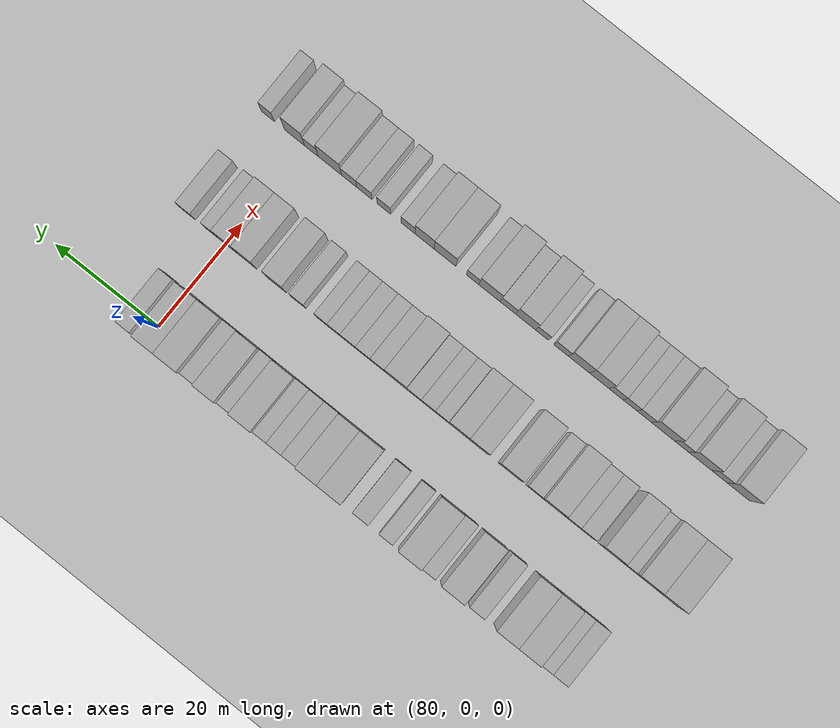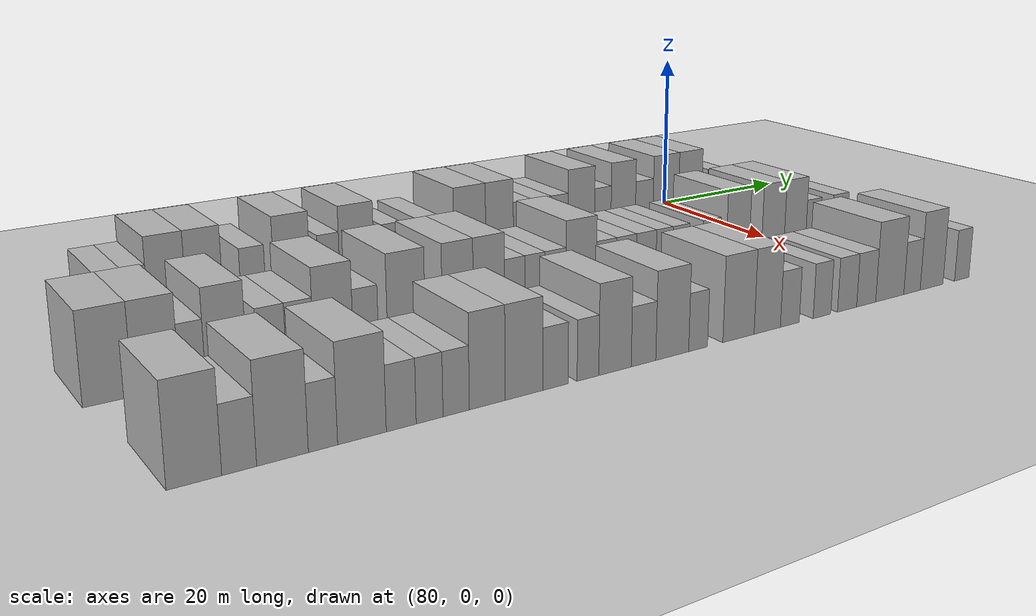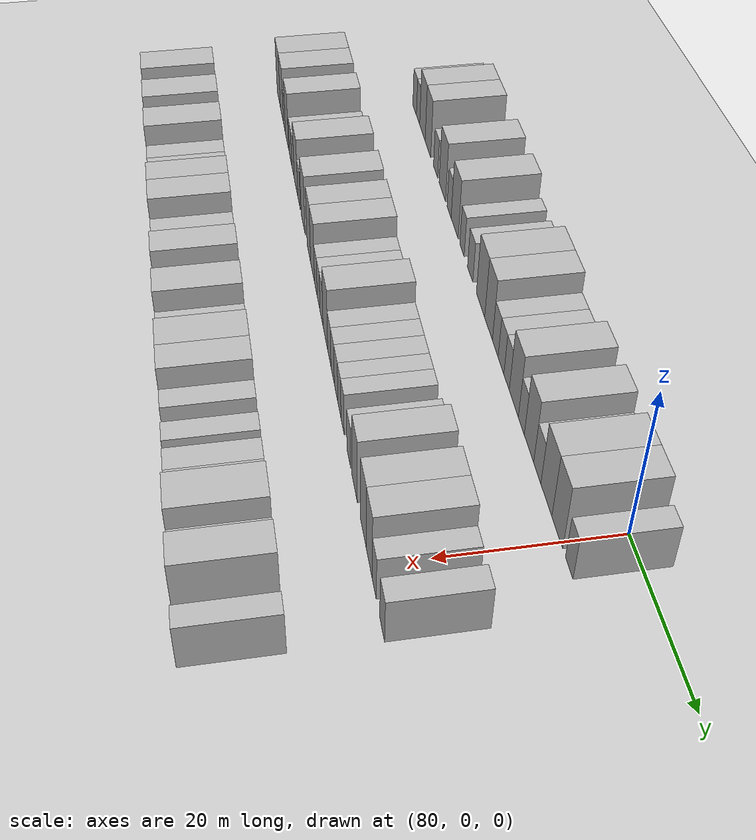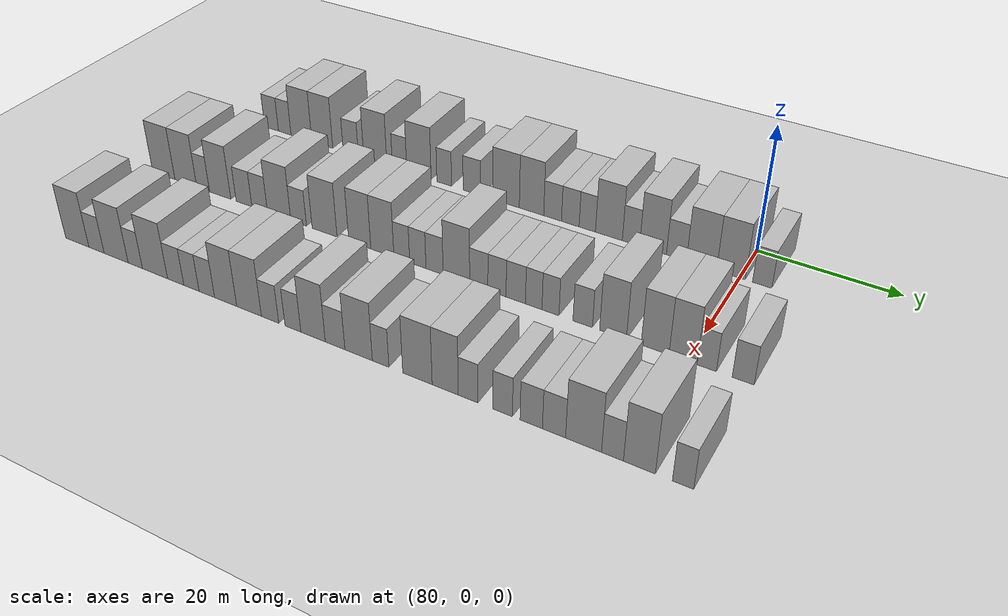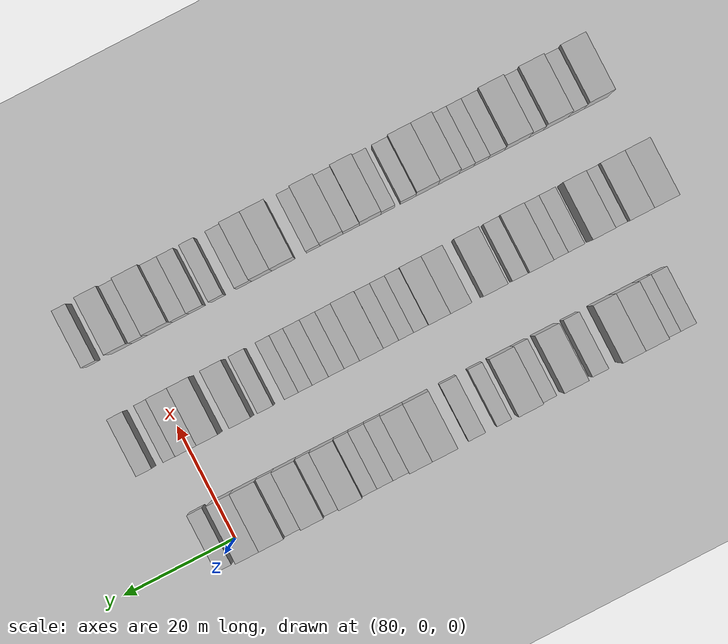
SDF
<sdf version="1.6">
 <world name="default">
  <include>
   <name>ground_plane_2</name>
   <uri>model://HANNAS_ground_plane</uri>
   <pose>100 0 0  0 0 0</pose>
  </include>
  <model name="building_571">
   <static>1</static>
   <pose>82.0000 -78.5633 0 0.000000 0.000000 0.000000</pose>
   <link name="link">
    <pose>0 0 3.00 0 0 0</pose>
    <collision name="collision"><geometry><box><size>10.0000 2.7761 6.0000</size></box></geometry></collision>
    <visual name="visual">
     <cast_shadows>0</cast_shadows>
     <geometry><box><size>10.0000 2.7761 6.0000</size></box></geometry>
     <material>
      <script>
       <uri>model://HANNAS_wall/materials/scripts</uri>
       <uri>model://HANNAS_wall/materials/textures</uri>
       <name>vrc/HANNAS_wall</name>
      </script>
     </material>
    </visual>
   </link>
  </model>
  <model name="building_572">
   <static>1</static>
   <pose>82.0000 -75.9227 0 0.000000 0.000000 0.000000</pose>
   <link name="link">
    <pose>0 0 3.00 0 0 0</pose>
    <collision name="collision"><geometry><box><size>10.0000 2.5051 6.0000</size></box></geometry></collision>
    <visual name="visual">
     <cast_shadows>0</cast_shadows>
     <geometry><box><size>10.0000 2.5051 6.0000</size></box></geometry>
     <material>
      <script>
       <uri>model://HANNAS_wall/materials/scripts</uri>
       <uri>model://HANNAS_wall/materials/textures</uri>
       <name>vrc/HANNAS_wall</name>
      </script>
     </material>
    </visual>
   </link>
  </model>
  <model name="building_573">
   <static>1</static>
   <pose>82.0000 -72.6256 0 0.000000 0.000000 0.000000</pose>
   <link name="link">
    <pose>0 0 4.50 0 0 0</pose>
    <collision name="collision"><geometry><box><size>10.0000 4.0890 9.0000</size></box></geometry></collision>
    <visual name="visual">
     <cast_shadows>0</cast_shadows>
     <geometry><box><size>10.0000 4.0890 9.0000</size></box></geometry>
     <material>
      <script>
       <uri>model://HANNAS_wall/materials/scripts</uri>
       <uri>model://HANNAS_wall/materials/textures</uri>
       <name>vrc/HANNAS_wall</name>
      </script>
     </material>
    </visual>
   </link>
  </model>
  <model name="building_574">
   <static>1</static>
   <pose>82.0000 -68.5696 0 0.000000 0.000000 0.000000</pose>
   <link name="link">
    <pose>0 0 4.50 0 0 0</pose>
    <collision name="collision"><geometry><box><size>10.0000 4.0230 9.0000</size></box></geometry></collision>
    <visual name="visual">
     <cast_shadows>0</cast_shadows>
     <geometry><box><size>10.0000 4.0230 9.0000</size></box></geometry>
     <material>
      <script>
       <uri>model://HANNAS_wall/materials/scripts</uri>
       <uri>model://HANNAS_wall/materials/textures</uri>
       <name>vrc/HANNAS_wall</name>
      </script>
     </material>
    </visual>
   </link>
  </model>
  <model name="building_575">
   <static>1</static>
   <pose>82.0000 -63.1375 0 0.000000 0.000000 0.000000</pose>
   <link name="link">
    <pose>0 0 3.00 0 0 0</pose>
    <collision name="collision"><geometry><box><size>10.0000 2.8412 6.0000</size></box></geometry></collision>
    <visual name="visual">
     <cast_shadows>0</cast_shadows>
     <geometry><box><size>10.0000 2.8412 6.0000</size></box></geometry>
     <material>
      <script>
       <uri>model://HANNAS_wall/materials/scripts</uri>
       <uri>model://HANNAS_wall/materials/textures</uri>
       <name>vrc/HANNAS_wall</name>
      </script>
     </material>
    </visual>
   </link>
  </model>
  <model name="building_576">
   <static>1</static>
   <pose>82.0000 -58.5789 0 0.000000 0.000000 0.000000</pose>
   <link name="link">
    <pose>0 0 4.50 0 0 0</pose>
    <collision name="collision"><geometry><box><size>10.0000 4.2760 9.0000</size></box></geometry></collision>
    <visual name="visual">
     <cast_shadows>0</cast_shadows>
     <geometry><box><size>10.0000 4.2760 9.0000</size></box></geometry>
     <material>
      <script>
       <uri>model://HANNAS_wall/materials/scripts</uri>
       <uri>model://HANNAS_wall/materials/textures</uri>
       <name>vrc/HANNAS_wall</name>
      </script>
     </material>
    </visual>
   </link>
  </model>
  <model name="building_577">
   <static>1</static>
   <pose>82.0000 -54.1396 0 0.000000 0.000000 0.000000</pose>
   <link name="link">
    <pose>0 0 3.00 0 0 0</pose>
    <collision name="collision"><geometry><box><size>10.0000 2.6026 6.0000</size></box></geometry></collision>
    <visual name="visual">
     <cast_shadows>0</cast_shadows>
     <geometry><box><size>10.0000 2.6026 6.0000</size></box></geometry>
     <material>
      <script>
       <uri>model://HANNAS_wall/materials/scripts</uri>
       <uri>model://HANNAS_wall/materials/textures</uri>
       <name>vrc/HANNAS_wall</name>
      </script>
     </material>
    </visual>
   </link>
  </model>
  <model name="building_578">
   <static>1</static>
   <pose>82.0000 -50.6684 0 0.000000 0.000000 0.000000</pose>
   <link name="link">
    <pose>0 0 4.50 0 0 0</pose>
    <collision name="collision"><geometry><box><size>10.0000 4.3397 9.0000</size></box></geometry></collision>
    <visual name="visual">
     <cast_shadows>0</cast_shadows>
     <geometry><box><size>10.0000 4.3397 9.0000</size></box></geometry>
     <material>
      <script>
       <uri>model://HANNAS_wall/materials/scripts</uri>
       <uri>model://HANNAS_wall/materials/textures</uri>
       <name>vrc/HANNAS_wall</name>
      </script>
     </material>
    </visual>
   </link>
  </model>
  <model name="building_579">
   <static>1</static>
   <pose>82.0000 -46.2146 0 0.000000 0.000000 0.000000</pose>
   <link name="link">
    <pose>0 0 3.00 0 0 0</pose>
    <collision name="collision"><geometry><box><size>10.0000 2.5679 6.0000</size></box></geometry></collision>
    <visual name="visual">
     <cast_shadows>0</cast_shadows>
     <geometry><box><size>10.0000 2.5679 6.0000</size></box></geometry>
     <material>
      <script>
       <uri>model://HANNAS_wall/materials/scripts</uri>
       <uri>model://HANNAS_wall/materials/textures</uri>
       <name>vrc/HANNAS_wall</name>
      </script>
     </material>
    </visual>
   </link>
  </model>
  <model name="building_580">
   <static>1</static>
   <pose>82.0000 -41.4383 0 0.000000 0.000000 0.000000</pose>
   <link name="link">
    <pose>0 0 3.00 0 0 0</pose>
    <collision name="collision"><geometry><box><size>10.0000 2.9846 6.0000</size></box></geometry></collision>
    <visual name="visual">
     <cast_shadows>0</cast_shadows>
     <geometry><box><size>10.0000 2.9846 6.0000</size></box></geometry>
     <material>
      <script>
       <uri>model://HANNAS_wall/materials/scripts</uri>
       <uri>model://HANNAS_wall/materials/textures</uri>
       <name>vrc/HANNAS_wall</name>
      </script>
     </material>
    </visual>
   </link>
  </model>
  <model name="building_581">
   <static>1</static>
   <pose>82.0000 -35.7157 0 0.000000 0.000000 0.000000</pose>
   <link name="link">
    <pose>0 0 4.50 0 0 0</pose>
    <collision name="collision"><geometry><box><size>10.0000 4.4606 9.0000</size></box></geometry></collision>
    <visual name="visual">
     <cast_shadows>0</cast_shadows>
     <geometry><box><size>10.0000 4.4606 9.0000</size></box></geometry>
     <material>
      <script>
       <uri>model://HANNAS_wall/materials/scripts</uri>
       <uri>model://HANNAS_wall/materials/textures</uri>
       <name>vrc/HANNAS_wall</name>
      </script>
     </material>
    </visual>
   </link>
  </model>
  <model name="building_582">
   <static>1</static>
   <pose>82.0000 -31.4929 0 0.000000 0.000000 0.000000</pose>
   <link name="link">
    <pose>0 0 4.50 0 0 0</pose>
    <collision name="collision"><geometry><box><size>10.0000 3.9851 9.0000</size></box></geometry></collision>
    <visual name="visual">
     <cast_shadows>0</cast_shadows>
     <geometry><box><size>10.0000 3.9851 9.0000</size></box></geometry>
     <material>
      <script>
       <uri>model://HANNAS_wall/materials/scripts</uri>
       <uri>model://HANNAS_wall/materials/textures</uri>
       <name>vrc/HANNAS_wall</name>
      </script>
     </material>
    </visual>
   </link>
  </model>
  <model name="building_583">
   <static>1</static>
   <pose>82.0000 -28.0771 0 0.000000 0.000000 0.000000</pose>
   <link name="link">
    <pose>0 0 3.00 0 0 0</pose>
    <collision name="collision"><geometry><box><size>10.0000 2.8464 6.0000</size></box></geometry></collision>
    <visual name="visual">
     <cast_shadows>0</cast_shadows>
     <geometry><box><size>10.0000 2.8464 6.0000</size></box></geometry>
     <material>
      <script>
       <uri>model://HANNAS_wall/materials/scripts</uri>
       <uri>model://HANNAS_wall/materials/textures</uri>
       <name>vrc/HANNAS_wall</name>
      </script>
     </material>
    </visual>
   </link>
  </model>
  <model name="building_584">
   <static>1</static>
   <pose>82.0000 -25.2578 0 0.000000 0.000000 0.000000</pose>
   <link name="link">
    <pose>0 0 3.00 0 0 0</pose>
    <collision name="collision"><geometry><box><size>10.0000 2.7924 6.0000</size></box></geometry></collision>
    <visual name="visual">
     <cast_shadows>0</cast_shadows>
     <geometry><box><size>10.0000 2.7924 6.0000</size></box></geometry>
     <material>
      <script>
       <uri>model://HANNAS_wall/materials/scripts</uri>
       <uri>model://HANNAS_wall/materials/textures</uri>
       <name>vrc/HANNAS_wall</name>
      </script>
     </material>
    </visual>
   </link>
  </model>
  <model name="building_585">
   <static>1</static>
   <pose>82.0000 -22.5825 0 0.000000 0.000000 0.000000</pose>
   <link name="link">
    <pose>0 0 3.00 0 0 0</pose>
    <collision name="collision"><geometry><box><size>10.0000 2.5582 6.0000</size></box></geometry></collision>
    <visual name="visual">
     <cast_shadows>0</cast_shadows>
     <geometry><box><size>10.0000 2.5582 6.0000</size></box></geometry>
     <material>
      <script>
       <uri>model://HANNAS_wall/materials/scripts</uri>
       <uri>model://HANNAS_wall/materials/textures</uri>
       <name>vrc/HANNAS_wall</name>
      </script>
     </material>
    </visual>
   </link>
  </model>
  <model name="building_586">
   <static>1</static>
   <pose>82.0000 -19.2371 0 0.000000 0.000000 0.000000</pose>
   <link name="link">
    <pose>0 0 4.50 0 0 0</pose>
    <collision name="collision"><geometry><box><size>10.0000 4.1325 9.0000</size></box></geometry></collision>
    <visual name="visual">
     <cast_shadows>0</cast_shadows>
     <geometry><box><size>10.0000 4.1325 9.0000</size></box></geometry>
     <material>
      <script>
       <uri>model://HANNAS_wall/materials/scripts</uri>
       <uri>model://HANNAS_wall/materials/textures</uri>
       <name>vrc/HANNAS_wall</name>
      </script>
     </material>
    </visual>
   </link>
  </model>
  <model name="building_587">
   <static>1</static>
   <pose>82.0000 -15.8638 0 0.000000 0.000000 0.000000</pose>
   <link name="link">
    <pose>0 0 3.00 0 0 0</pose>
    <collision name="collision"><geometry><box><size>10.0000 2.6140 6.0000</size></box></geometry></collision>
    <visual name="visual">
     <cast_shadows>0</cast_shadows>
     <geometry><box><size>10.0000 2.6140 6.0000</size></box></geometry>
     <material>
      <script>
       <uri>model://HANNAS_wall/materials/scripts</uri>
       <uri>model://HANNAS_wall/materials/textures</uri>
       <name>vrc/HANNAS_wall</name>
      </script>
     </material>
    </visual>
   </link>
  </model>
  <model name="building_588">
   <static>1</static>
   <pose>82.0000 -12.5617 0 0.000000 0.000000 0.000000</pose>
   <link name="link">
    <pose>0 0 4.50 0 0 0</pose>
    <collision name="collision"><geometry><box><size>10.0000 3.9901 9.0000</size></box></geometry></collision>
    <visual name="visual">
     <cast_shadows>0</cast_shadows>
     <geometry><box><size>10.0000 3.9901 9.0000</size></box></geometry>
     <material>
      <script>
       <uri>model://HANNAS_wall/materials/scripts</uri>
       <uri>model://HANNAS_wall/materials/textures</uri>
       <name>vrc/HANNAS_wall</name>
      </script>
     </material>
    </visual>
   </link>
  </model>
  <model name="building_589">
   <static>1</static>
   <pose>82.0000 -9.1025 0 0.000000 0.000000 0.000000</pose>
   <link name="link">
    <pose>0 0 3.00 0 0 0</pose>
    <collision name="collision"><geometry><box><size>10.0000 2.9283 6.0000</size></box></geometry></collision>
    <visual name="visual">
     <cast_shadows>0</cast_shadows>
     <geometry><box><size>10.0000 2.9283 6.0000</size></box></geometry>
     <material>
      <script>
       <uri>model://HANNAS_wall/materials/scripts</uri>
       <uri>model://HANNAS_wall/materials/textures</uri>
       <name>vrc/HANNAS_wall</name>
      </script>
     </material>
    </visual>
   </link>
  </model>
  <model name="building_590">
   <static>1</static>
   <pose>82.0000 -5.4748 0 0.000000 0.000000 0.000000</pose>
   <link name="link">
    <pose>0 0 4.50 0 0 0</pose>
    <collision name="collision"><geometry><box><size>10.0000 4.3272 9.0000</size></box></geometry></collision>
    <visual name="visual">
     <cast_shadows>0</cast_shadows>
     <geometry><box><size>10.0000 4.3272 9.0000</size></box></geometry>
     <material>
      <script>
       <uri>model://HANNAS_wall/materials/scripts</uri>
       <uri>model://HANNAS_wall/materials/textures</uri>
       <name>vrc/HANNAS_wall</name>
      </script>
     </material>
    </visual>
   </link>
  </model>
  <model name="building_591">
   <static>1</static>
   <pose>82.0000 -1.2862 0 0.000000 0.000000 0.000000</pose>
   <link name="link">
    <pose>0 0 4.50 0 0 0</pose>
    <collision name="collision"><geometry><box><size>10.0000 4.0501 9.0000</size></box></geometry></collision>
    <visual name="visual">
     <cast_shadows>0</cast_shadows>
     <geometry><box><size>10.0000 4.0501 9.0000</size></box></geometry>
     <material>
      <script>
       <uri>model://HANNAS_wall/materials/scripts</uri>
       <uri>model://HANNAS_wall/materials/textures</uri>
       <name>vrc/HANNAS_wall</name>
      </script>
     </material>
    </visual>
   </link>
  </model>
  <model name="building_592">
   <static>1</static>
   <pose>82.0000 3.0741 0 0.000000 0.000000 0.000000</pose>
   <link name="link">
    <pose>0 0 3.00 0 0 0</pose>
    <collision name="collision"><geometry><box><size>10.0000 2.6705 6.0000</size></box></geometry></collision>
    <visual name="visual">
     <cast_shadows>0</cast_shadows>
     <geometry><box><size>10.0000 2.6705 6.0000</size></box></geometry>
     <material>
      <script>
       <uri>model://HANNAS_wall/materials/scripts</uri>
       <uri>model://HANNAS_wall/materials/textures</uri>
       <name>vrc/HANNAS_wall</name>
      </script>
     </material>
    </visual>
   </link>
  </model>
  <model name="building_751">
   <static>1</static>
   <pose>101.0000 -84.1417 0 0.000000 0.000000 0.000000</pose>
   <link name="link">
    <pose>0 0 4.50 0 0 0</pose>
    <collision name="collision"><geometry><box><size>10.0000 4.4038 9.0000</size></box></geometry></collision>
    <visual name="visual">
     <cast_shadows>0</cast_shadows>
     <geometry><box><size>10.0000 4.4038 9.0000</size></box></geometry>
     <material>
      <script>
       <uri>model://HANNAS_wall/materials/scripts</uri>
       <uri>model://HANNAS_wall/materials/textures</uri>
       <name>vrc/HANNAS_wall</name>
      </script>
     </material>
    </visual>
   </link>
  </model>
  <model name="building_752">
   <static>1</static>
   <pose>101.0000 -79.8134 0 0.000000 0.000000 0.000000</pose>
   <link name="link">
    <pose>0 0 4.50 0 0 0</pose>
    <collision name="collision"><geometry><box><size>10.0000 4.2528 9.0000</size></box></geometry></collision>
    <visual name="visual">
     <cast_shadows>0</cast_shadows>
     <geometry><box><size>10.0000 4.2528 9.0000</size></box></geometry>
     <material>
      <script>
       <uri>model://HANNAS_wall/materials/scripts</uri>
       <uri>model://HANNAS_wall/materials/textures</uri>
       <name>vrc/HANNAS_wall</name>
      </script>
     </material>
    </visual>
   </link>
  </model>
  <model name="building_753">
   <static>1</static>
   <pose>101.0000 -76.4559 0 0.000000 0.000000 0.000000</pose>
   <link name="link">
    <pose>0 0 3.00 0 0 0</pose>
    <collision name="collision"><geometry><box><size>10.0000 2.4620 6.0000</size></box></geometry></collision>
    <visual name="visual">
     <cast_shadows>0</cast_shadows>
     <geometry><box><size>10.0000 2.4620 6.0000</size></box></geometry>
     <material>
      <script>
       <uri>model://HANNAS_wall/materials/scripts</uri>
       <uri>model://HANNAS_wall/materials/textures</uri>
       <name>vrc/HANNAS_wall</name>
      </script>
     </material>
    </visual>
   </link>
  </model>
  <model name="building_754">
   <static>1</static>
   <pose>101.0000 -73.2183 0 0.000000 0.000000 0.000000</pose>
   <link name="link">
    <pose>0 0 4.50 0 0 0</pose>
    <collision name="collision"><geometry><box><size>10.0000 4.0132 9.0000</size></box></geometry></collision>
    <visual name="visual">
     <cast_shadows>0</cast_shadows>
     <geometry><box><size>10.0000 4.0132 9.0000</size></box></geometry>
     <material>
      <script>
       <uri>model://HANNAS_wall/materials/scripts</uri>
       <uri>model://HANNAS_wall/materials/textures</uri>
       <name>vrc/HANNAS_wall</name>
      </script>
     </material>
    </visual>
   </link>
  </model>
  <model name="building_755">
   <static>1</static>
   <pose>101.0000 -68.7590 0 0.000000 0.000000 0.000000</pose>
   <link name="link">
    <pose>0 0 3.00 0 0 0</pose>
    <collision name="collision"><geometry><box><size>10.0000 2.9053 6.0000</size></box></geometry></collision>
    <visual name="visual">
     <cast_shadows>0</cast_shadows>
     <geometry><box><size>10.0000 2.9053 6.0000</size></box></geometry>
     <material>
      <script>
       <uri>model://HANNAS_wall/materials/scripts</uri>
       <uri>model://HANNAS_wall/materials/textures</uri>
       <name>vrc/HANNAS_wall</name>
      </script>
     </material>
    </visual>
   </link>
  </model>
  <model name="building_756">
   <static>1</static>
   <pose>101.0000 -65.8797 0 0.000000 0.000000 0.000000</pose>
   <link name="link">
    <pose>0 0 3.00 0 0 0</pose>
    <collision name="collision"><geometry><box><size>10.0000 2.8534 6.0000</size></box></geometry></collision>
    <visual name="visual">
     <cast_shadows>0</cast_shadows>
     <geometry><box><size>10.0000 2.8534 6.0000</size></box></geometry>
     <material>
      <script>
       <uri>model://HANNAS_wall/materials/scripts</uri>
       <uri>model://HANNAS_wall/materials/textures</uri>
       <name>vrc/HANNAS_wall</name>
      </script>
     </material>
    </visual>
   </link>
  </model>
  <model name="building_757">
   <static>1</static>
   <pose>101.0000 -62.3561 0 0.000000 0.000000 0.000000</pose>
   <link name="link">
    <pose>0 0 4.50 0 0 0</pose>
    <collision name="collision"><geometry><box><size>10.0000 4.1937 9.0000</size></box></geometry></collision>
    <visual name="visual">
     <cast_shadows>0</cast_shadows>
     <geometry><box><size>10.0000 4.1937 9.0000</size></box></geometry>
     <material>
      <script>
       <uri>model://HANNAS_wall/materials/scripts</uri>
       <uri>model://HANNAS_wall/materials/textures</uri>
       <name>vrc/HANNAS_wall</name>
      </script>
     </material>
    </visual>
   </link>
  </model>
  <model name="building_758">
   <static>1</static>
   <pose>101.0000 -58.8828 0 0.000000 0.000000 0.000000</pose>
   <link name="link">
    <pose>0 0 3.00 0 0 0</pose>
    <collision name="collision"><geometry><box><size>10.0000 2.7529 6.0000</size></box></geometry></collision>
    <visual name="visual">
     <cast_shadows>0</cast_shadows>
     <geometry><box><size>10.0000 2.7529 6.0000</size></box></geometry>
     <material>
      <script>
       <uri>model://HANNAS_wall/materials/scripts</uri>
       <uri>model://HANNAS_wall/materials/textures</uri>
       <name>vrc/HANNAS_wall</name>
      </script>
     </material>
    </visual>
   </link>
  </model>
  <model name="building_759">
   <static>1</static>
   <pose>101.0000 -54.3605 0 0.000000 0.000000 0.000000</pose>
   <link name="link">
    <pose>0 0 4.50 0 0 0</pose>
    <collision name="collision"><geometry><box><size>10.0000 4.2918 9.0000</size></box></geometry></collision>
    <visual name="visual">
     <cast_shadows>0</cast_shadows>
     <geometry><box><size>10.0000 4.2918 9.0000</size></box></geometry>
     <material>
      <script>
       <uri>model://HANNAS_wall/materials/scripts</uri>
       <uri>model://HANNAS_wall/materials/textures</uri>
       <name>vrc/HANNAS_wall</name>
      </script>
     </material>
    </visual>
   </link>
  </model>
  <model name="building_760">
   <static>1</static>
   <pose>101.0000 -48.3642 0 0.000000 0.000000 0.000000</pose>
   <link name="link">
    <pose>0 0 4.50 0 0 0</pose>
    <collision name="collision"><geometry><box><size>10.0000 3.7008 9.0000</size></box></geometry></collision>
    <visual name="visual">
     <cast_shadows>0</cast_shadows>
     <geometry><box><size>10.0000 3.7008 9.0000</size></box></geometry>
     <material>
      <script>
       <uri>model://HANNAS_wall/materials/scripts</uri>
       <uri>model://HANNAS_wall/materials/textures</uri>
       <name>vrc/HANNAS_wall</name>
      </script>
     </material>
    </visual>
   </link>
  </model>
  <model name="building_761">
   <static>1</static>
   <pose>101.0000 -44.6102 0 0.000000 0.000000 0.000000</pose>
   <link name="link">
    <pose>0 0 4.50 0 0 0</pose>
    <collision name="collision"><geometry><box><size>10.0000 3.8074 9.0000</size></box></geometry></collision>
    <visual name="visual">
     <cast_shadows>0</cast_shadows>
     <geometry><box><size>10.0000 3.8074 9.0000</size></box></geometry>
     <material>
      <script>
       <uri>model://HANNAS_wall/materials/scripts</uri>
       <uri>model://HANNAS_wall/materials/textures</uri>
       <name>vrc/HANNAS_wall</name>
      </script>
     </material>
    </visual>
   </link>
  </model>
  <model name="building_762">
   <static>1</static>
   <pose>101.0000 -41.4320 0 0.000000 0.000000 0.000000</pose>
   <link name="link">
    <pose>0 0 3.00 0 0 0</pose>
    <collision name="collision"><geometry><box><size>10.0000 2.5489 6.0000</size></box></geometry></collision>
    <visual name="visual">
     <cast_shadows>0</cast_shadows>
     <geometry><box><size>10.0000 2.5489 6.0000</size></box></geometry>
     <material>
      <script>
       <uri>model://HANNAS_wall/materials/scripts</uri>
       <uri>model://HANNAS_wall/materials/textures</uri>
       <name>vrc/HANNAS_wall</name>
      </script>
     </material>
    </visual>
   </link>
  </model>
  <model name="building_763">
   <static>1</static>
   <pose>101.0000 -38.8508 0 0.000000 0.000000 0.000000</pose>
   <link name="link">
    <pose>0 0 3.00 0 0 0</pose>
    <collision name="collision"><geometry><box><size>10.0000 2.6135 6.0000</size></box></geometry></collision>
    <visual name="visual">
     <cast_shadows>0</cast_shadows>
     <geometry><box><size>10.0000 2.6135 6.0000</size></box></geometry>
     <material>
      <script>
       <uri>model://HANNAS_wall/materials/scripts</uri>
       <uri>model://HANNAS_wall/materials/textures</uri>
       <name>vrc/HANNAS_wall</name>
      </script>
     </material>
    </visual>
   </link>
  </model>
  <model name="building_764">
   <static>1</static>
   <pose>101.0000 -36.1887 0 0.000000 0.000000 0.000000</pose>
   <link name="link">
    <pose>0 0 3.00 0 0 0</pose>
    <collision name="collision"><geometry><box><size>10.0000 2.7107 6.0000</size></box></geometry></collision>
    <visual name="visual">
     <cast_shadows>0</cast_shadows>
     <geometry><box><size>10.0000 2.7107 6.0000</size></box></geometry>
     <material>
      <script>
       <uri>model://HANNAS_wall/materials/scripts</uri>
       <uri>model://HANNAS_wall/materials/textures</uri>
       <name>vrc/HANNAS_wall</name>
      </script>
     </material>
    </visual>
   </link>
  </model>
  <model name="building_765">
   <static>1</static>
   <pose>101.0000 -32.7738 0 0.000000 0.000000 0.000000</pose>
   <link name="link">
    <pose>0 0 4.50 0 0 0</pose>
    <collision name="collision"><geometry><box><size>10.0000 4.1192 9.0000</size></box></geometry></collision>
    <visual name="visual">
     <cast_shadows>0</cast_shadows>
     <geometry><box><size>10.0000 4.1192 9.0000</size></box></geometry>
     <material>
      <script>
       <uri>model://HANNAS_wall/materials/scripts</uri>
       <uri>model://HANNAS_wall/materials/textures</uri>
       <name>vrc/HANNAS_wall</name>
      </script>
     </material>
    </visual>
   </link>
  </model>
  <model name="building_766">
   <static>1</static>
   <pose>101.0000 -29.3287 0 0.000000 0.000000 0.000000</pose>
   <link name="link">
    <pose>0 0 3.00 0 0 0</pose>
    <collision name="collision"><geometry><box><size>10.0000 2.7709 6.0000</size></box></geometry></collision>
    <visual name="visual">
     <cast_shadows>0</cast_shadows>
     <geometry><box><size>10.0000 2.7709 6.0000</size></box></geometry>
     <material>
      <script>
       <uri>model://HANNAS_wall/materials/scripts</uri>
       <uri>model://HANNAS_wall/materials/textures</uri>
       <name>vrc/HANNAS_wall</name>
      </script>
     </material>
    </visual>
   </link>
  </model>
  <model name="building_767">
   <static>1</static>
   <pose>101.0000 -26.5750 0 0.000000 0.000000 0.000000</pose>
   <link name="link">
    <pose>0 0 3.00 0 0 0</pose>
    <collision name="collision"><geometry><box><size>10.0000 2.7366 6.0000</size></box></geometry></collision>
    <visual name="visual">
     <cast_shadows>0</cast_shadows>
     <geometry><box><size>10.0000 2.7366 6.0000</size></box></geometry>
     <material>
      <script>
       <uri>model://HANNAS_wall/materials/scripts</uri>
       <uri>model://HANNAS_wall/materials/textures</uri>
       <name>vrc/HANNAS_wall</name>
      </script>
     </material>
    </visual>
   </link>
  </model>
  <model name="building_768">
   <static>1</static>
   <pose>101.0000 -23.7702 0 0.000000 0.000000 0.000000</pose>
   <link name="link">
    <pose>0 0 3.00 0 0 0</pose>
    <collision name="collision"><geometry><box><size>10.0000 2.8729 6.0000</size></box></geometry></collision>
    <visual name="visual">
     <cast_shadows>0</cast_shadows>
     <geometry><box><size>10.0000 2.8729 6.0000</size></box></geometry>
     <material>
      <script>
       <uri>model://HANNAS_wall/materials/scripts</uri>
       <uri>model://HANNAS_wall/materials/textures</uri>
       <name>vrc/HANNAS_wall</name>
      </script>
     </material>
    </visual>
   </link>
  </model>
  <model name="building_769">
   <static>1</static>
   <pose>101.0000 -21.1255 0 0.000000 0.000000 0.000000</pose>
   <link name="link">
    <pose>0 0 3.00 0 0 0</pose>
    <collision name="collision"><geometry><box><size>10.0000 2.4165 6.0000</size></box></geometry></collision>
    <visual name="visual">
     <cast_shadows>0</cast_shadows>
     <geometry><box><size>10.0000 2.4165 6.0000</size></box></geometry>
     <material>
      <script>
       <uri>model://HANNAS_wall/materials/scripts</uri>
       <uri>model://HANNAS_wall/materials/textures</uri>
       <name>vrc/HANNAS_wall</name>
      </script>
     </material>
    </visual>
   </link>
  </model>
  <model name="building_770">
   <static>1</static>
   <pose>101.0000 -18.6906 0 0.000000 0.000000 0.000000</pose>
   <link name="link">
    <pose>0 0 3.00 0 0 0</pose>
    <collision name="collision"><geometry><box><size>10.0000 2.4534 6.0000</size></box></geometry></collision>
    <visual name="visual">
     <cast_shadows>0</cast_shadows>
     <geometry><box><size>10.0000 2.4534 6.0000</size></box></geometry>
     <material>
      <script>
       <uri>model://HANNAS_wall/materials/scripts</uri>
       <uri>model://HANNAS_wall/materials/textures</uri>
       <name>vrc/HANNAS_wall</name>
      </script>
     </material>
    </visual>
   </link>
  </model>
  <model name="building_771">
   <static>1</static>
   <pose>101.0000 -14.0939 0 0.000000 0.000000 0.000000</pose>
   <link name="link">
    <pose>0 0 3.00 0 0 0</pose>
    <collision name="collision"><geometry><box><size>10.0000 2.7400 6.0000</size></box></geometry></collision>
    <visual name="visual">
     <cast_shadows>0</cast_shadows>
     <geometry><box><size>10.0000 2.7400 6.0000</size></box></geometry>
     <material>
      <script>
       <uri>model://HANNAS_wall/materials/scripts</uri>
       <uri>model://HANNAS_wall/materials/textures</uri>
       <name>vrc/HANNAS_wall</name>
      </script>
     </material>
    </visual>
   </link>
  </model>
  <model name="building_772">
   <static>1</static>
   <pose>101.0000 -9.8814 0 0.000000 0.000000 0.000000</pose>
   <link name="link">
    <pose>0 0 4.50 0 0 0</pose>
    <collision name="collision"><geometry><box><size>10.0000 3.6848 9.0000</size></box></geometry></collision>
    <visual name="visual">
     <cast_shadows>0</cast_shadows>
     <geometry><box><size>10.0000 3.6848 9.0000</size></box></geometry>
     <material>
      <script>
       <uri>model://HANNAS_wall/materials/scripts</uri>
       <uri>model://HANNAS_wall/materials/textures</uri>
       <name>vrc/HANNAS_wall</name>
      </script>
     </material>
    </visual>
   </link>
  </model>
  <model name="building_773">
   <static>1</static>
   <pose>101.0000 -4.1762 0 0.000000 0.000000 0.000000</pose>
   <link name="link">
    <pose>0 0 4.50 0 0 0</pose>
    <collision name="collision"><geometry><box><size>10.0000 3.7255 9.0000</size></box></geometry></collision>
    <visual name="visual">
     <cast_shadows>0</cast_shadows>
     <geometry><box><size>10.0000 3.7255 9.0000</size></box></geometry>
     <material>
      <script>
       <uri>model://HANNAS_wall/materials/scripts</uri>
       <uri>model://HANNAS_wall/materials/textures</uri>
       <name>vrc/HANNAS_wall</name>
      </script>
     </material>
    </visual>
   </link>
  </model>
  <model name="building_774">
   <static>1</static>
   <pose>101.0000 -0.4808 0 0.000000 0.000000 0.000000</pose>
   <link name="link">
    <pose>0 0 4.50 0 0 0</pose>
    <collision name="collision"><geometry><box><size>10.0000 3.6653 9.0000</size></box></geometry></collision>
    <visual name="visual">
     <cast_shadows>0</cast_shadows>
     <geometry><box><size>10.0000 3.6653 9.0000</size></box></geometry>
     <material>
      <script>
       <uri>model://HANNAS_wall/materials/scripts</uri>
       <uri>model://HANNAS_wall/materials/textures</uri>
       <name>vrc/HANNAS_wall</name>
      </script>
     </material>
    </visual>
   </link>
  </model>
  <model name="building_775">
   <static>1</static>
   <pose>101.0000 2.5983 0 0.000000 0.000000 0.000000</pose>
   <link name="link">
    <pose>0 0 3.00 0 0 0</pose>
    <collision name="collision"><geometry><box><size>10.0000 2.4929 6.0000</size></box></geometry></collision>
    <visual name="visual">
     <cast_shadows>0</cast_shadows>
     <geometry><box><size>10.0000 2.4929 6.0000</size></box></geometry>
     <material>
      <script>
       <uri>model://HANNAS_wall/materials/scripts</uri>
       <uri>model://HANNAS_wall/materials/textures</uri>
       <name>vrc/HANNAS_wall</name>
      </script>
     </material>
    </visual>
   </link>
  </model>
  <model name="building_776">
   <static>1</static>
   <pose>101.0000 7.2235 0 0.000000 0.000000 0.000000</pose>
   <link name="link">
    <pose>0 0 3.00 0 0 0</pose>
    <collision name="collision"><geometry><box><size>10.0000 2.7576 6.0000</size></box></geometry></collision>
    <visual name="visual">
     <cast_shadows>0</cast_shadows>
     <geometry><box><size>10.0000 2.7576 6.0000</size></box></geometry>
     <material>
      <script>
       <uri>model://HANNAS_wall/materials/scripts</uri>
       <uri>model://HANNAS_wall/materials/textures</uri>
       <name>vrc/HANNAS_wall</name>
      </script>
     </material>
    </visual>
   </link>
  </model>
  <model name="building_929">
   <static>1</static>
   <pose>120.0000 -82.8137 0 0.000000 0.000000 0.000000</pose>
   <link name="link">
    <pose>0 0 4.50 0 0 0</pose>
    <collision name="collision"><geometry><box><size>10.0000 4.4011 9.0000</size></box></geometry></collision>
    <visual name="visual">
     <cast_shadows>0</cast_shadows>
     <geometry><box><size>10.0000 4.4011 9.0000</size></box></geometry>
     <material>
      <script>
       <uri>model://HANNAS_wall/materials/scripts</uri>
       <uri>model://HANNAS_wall/materials/textures</uri>
       <name>vrc/HANNAS_wall</name>
      </script>
     </material>
    </visual>
   </link>
  </model>
  <model name="building_930">
   <static>1</static>
   <pose>120.0000 -79.1830 0 0.000000 0.000000 0.000000</pose>
   <link name="link">
    <pose>0 0 3.00 0 0 0</pose>
    <collision name="collision"><geometry><box><size>10.0000 2.8603 6.0000</size></box></geometry></collision>
    <visual name="visual">
     <cast_shadows>0</cast_shadows>
     <geometry><box><size>10.0000 2.8603 6.0000</size></box></geometry>
     <material>
      <script>
       <uri>model://HANNAS_wall/materials/scripts</uri>
       <uri>model://HANNAS_wall/materials/textures</uri>
       <name>vrc/HANNAS_wall</name>
      </script>
     </material>
    </visual>
   </link>
  </model>
  <model name="building_931">
   <static>1</static>
   <pose>120.0000 -75.5513 0 0.000000 0.000000 0.000000</pose>
   <link name="link">
    <pose>0 0 4.50 0 0 0</pose>
    <collision name="collision"><geometry><box><size>10.0000 4.4030 9.0000</size></box></geometry></collision>
    <visual name="visual">
     <cast_shadows>0</cast_shadows>
     <geometry><box><size>10.0000 4.4030 9.0000</size></box></geometry>
     <material>
      <script>
       <uri>model://HANNAS_wall/materials/scripts</uri>
       <uri>model://HANNAS_wall/materials/textures</uri>
       <name>vrc/HANNAS_wall</name>
      </script>
     </material>
    </visual>
   </link>
  </model>
  <model name="building_932">
   <static>1</static>
   <pose>120.0000 -72.0580 0 0.000000 0.000000 0.000000</pose>
   <link name="link">
    <pose>0 0 3.00 0 0 0</pose>
    <collision name="collision"><geometry><box><size>10.0000 2.5837 6.0000</size></box></geometry></collision>
    <visual name="visual">
     <cast_shadows>0</cast_shadows>
     <geometry><box><size>10.0000 2.5837 6.0000</size></box></geometry>
     <material>
      <script>
       <uri>model://HANNAS_wall/materials/scripts</uri>
       <uri>model://HANNAS_wall/materials/textures</uri>
       <name>vrc/HANNAS_wall</name>
      </script>
     </material>
    </visual>
   </link>
  </model>
  <model name="building_933">
   <static>1</static>
   <pose>120.0000 -68.5419 0 0.000000 0.000000 0.000000</pose>
   <link name="link">
    <pose>0 0 4.50 0 0 0</pose>
    <collision name="collision"><geometry><box><size>10.0000 4.4484 9.0000</size></box></geometry></collision>
    <visual name="visual">
     <cast_shadows>0</cast_shadows>
     <geometry><box><size>10.0000 4.4484 9.0000</size></box></geometry>
     <material>
      <script>
       <uri>model://HANNAS_wall/materials/scripts</uri>
       <uri>model://HANNAS_wall/materials/textures</uri>
       <name>vrc/HANNAS_wall</name>
      </script>
     </material>
    </visual>
   </link>
  </model>
  <model name="building_934">
   <static>1</static>
   <pose>120.0000 -64.8981 0 0.000000 0.000000 0.000000</pose>
   <link name="link">
    <pose>0 0 3.00 0 0 0</pose>
    <collision name="collision"><geometry><box><size>10.0000 2.8392 6.0000</size></box></geometry></collision>
    <visual name="visual">
     <cast_shadows>0</cast_shadows>
     <geometry><box><size>10.0000 2.8392 6.0000</size></box></geometry>
     <material>
      <script>
       <uri>model://HANNAS_wall/materials/scripts</uri>
       <uri>model://HANNAS_wall/materials/textures</uri>
       <name>vrc/HANNAS_wall</name>
      </script>
     </material>
    </visual>
   </link>
  </model>
  <model name="building_935">
   <static>1</static>
   <pose>120.0000 -62.1712 0 0.000000 0.000000 0.000000</pose>
   <link name="link">
    <pose>0 0 3.00 0 0 0</pose>
    <collision name="collision"><geometry><box><size>10.0000 2.6145 6.0000</size></box></geometry></collision>
    <visual name="visual">
     <cast_shadows>0</cast_shadows>
     <geometry><box><size>10.0000 2.6145 6.0000</size></box></geometry>
     <material>
      <script>
       <uri>model://HANNAS_wall/materials/scripts</uri>
       <uri>model://HANNAS_wall/materials/textures</uri>
       <name>vrc/HANNAS_wall</name>
      </script>
     </material>
    </visual>
   </link>
  </model>
  <model name="building_936">
   <static>1</static>
   <pose>120.0000 -59.5488 0 0.000000 0.000000 0.000000</pose>
   <link name="link">
    <pose>0 0 3.00 0 0 0</pose>
    <collision name="collision"><geometry><box><size>10.0000 2.6304 6.0000</size></box></geometry></collision>
    <visual name="visual">
     <cast_shadows>0</cast_shadows>
     <geometry><box><size>10.0000 2.6304 6.0000</size></box></geometry>
     <material>
      <script>
       <uri>model://HANNAS_wall/materials/scripts</uri>
       <uri>model://HANNAS_wall/materials/textures</uri>
       <name>vrc/HANNAS_wall</name>
      </script>
     </material>
    </visual>
   </link>
  </model>
  <model name="building_937">
   <static>1</static>
   <pose>120.0000 -56.3891 0 0.000000 0.000000 0.000000</pose>
   <link name="link">
    <pose>0 0 4.50 0 0 0</pose>
    <collision name="collision"><geometry><box><size>10.0000 3.6889 9.0000</size></box></geometry></collision>
    <visual name="visual">
     <cast_shadows>0</cast_shadows>
     <geometry><box><size>10.0000 3.6889 9.0000</size></box></geometry>
     <material>
      <script>
       <uri>model://HANNAS_wall/materials/scripts</uri>
       <uri>model://HANNAS_wall/materials/textures</uri>
       <name>vrc/HANNAS_wall</name>
      </script>
     </material>
    </visual>
   </link>
  </model>
  <model name="building_938">
   <static>1</static>
   <pose>120.0000 -52.5288 0 0.000000 0.000000 0.000000</pose>
   <link name="link">
    <pose>0 0 4.50 0 0 0</pose>
    <collision name="collision"><geometry><box><size>10.0000 4.0318 9.0000</size></box></geometry></collision>
    <visual name="visual">
     <cast_shadows>0</cast_shadows>
     <geometry><box><size>10.0000 4.0318 9.0000</size></box></geometry>
     <material>
      <script>
       <uri>model://HANNAS_wall/materials/scripts</uri>
       <uri>model://HANNAS_wall/materials/textures</uri>
       <name>vrc/HANNAS_wall</name>
      </script>
     </material>
    </visual>
   </link>
  </model>
  <model name="building_939">
   <static>1</static>
   <pose>120.0000 -49.1230 0 0.000000 0.000000 0.000000</pose>
   <link name="link">
    <pose>0 0 3.00 0 0 0</pose>
    <collision name="collision"><geometry><box><size>10.0000 2.7797 6.0000</size></box></geometry></collision>
    <visual name="visual">
     <cast_shadows>0</cast_shadows>
     <geometry><box><size>10.0000 2.7797 6.0000</size></box></geometry>
     <material>
      <script>
       <uri>model://HANNAS_wall/materials/scripts</uri>
       <uri>model://HANNAS_wall/materials/textures</uri>
       <name>vrc/HANNAS_wall</name>
      </script>
     </material>
    </visual>
   </link>
  </model>
  <model name="building_940">
   <static>1</static>
   <pose>120.0000 -45.4932 0 0.000000 0.000000 0.000000</pose>
   <link name="link">
    <pose>0 0 3.00 0 0 0</pose>
    <collision name="collision"><geometry><box><size>10.0000 2.4798 6.0000</size></box></geometry></collision>
    <visual name="visual">
     <cast_shadows>0</cast_shadows>
     <geometry><box><size>10.0000 2.4798 6.0000</size></box></geometry>
     <material>
      <script>
       <uri>model://HANNAS_wall/materials/scripts</uri>
       <uri>model://HANNAS_wall/materials/textures</uri>
       <name>vrc/HANNAS_wall</name>
      </script>
     </material>
    </visual>
   </link>
  </model>
  <model name="building_941">
   <static>1</static>
   <pose>120.0000 -42.3587 0 0.000000 0.000000 0.000000</pose>
   <link name="link">
    <pose>0 0 4.50 0 0 0</pose>
    <collision name="collision"><geometry><box><size>10.0000 3.7893 9.0000</size></box></geometry></collision>
    <visual name="visual">
     <cast_shadows>0</cast_shadows>
     <geometry><box><size>10.0000 3.7893 9.0000</size></box></geometry>
     <material>
      <script>
       <uri>model://HANNAS_wall/materials/scripts</uri>
       <uri>model://HANNAS_wall/materials/textures</uri>
       <name>vrc/HANNAS_wall</name>
      </script>
     </material>
    </visual>
   </link>
  </model>
  <model name="building_942">
   <static>1</static>
   <pose>120.0000 -38.9791 0 0.000000 0.000000 0.000000</pose>
   <link name="link">
    <pose>0 0 3.00 0 0 0</pose>
    <collision name="collision"><geometry><box><size>10.0000 2.9699 6.0000</size></box></geometry></collision>
    <visual name="visual">
     <cast_shadows>0</cast_shadows>
     <geometry><box><size>10.0000 2.9699 6.0000</size></box></geometry>
     <material>
      <script>
       <uri>model://HANNAS_wall/materials/scripts</uri>
       <uri>model://HANNAS_wall/materials/textures</uri>
       <name>vrc/HANNAS_wall</name>
      </script>
     </material>
    </visual>
   </link>
  </model>
  <model name="building_943">
   <static>1</static>
   <pose>120.0000 -35.4485 0 0.000000 0.000000 0.000000</pose>
   <link name="link">
    <pose>0 0 4.50 0 0 0</pose>
    <collision name="collision"><geometry><box><size>10.0000 4.0914 9.0000</size></box></geometry></collision>
    <visual name="visual">
     <cast_shadows>0</cast_shadows>
     <geometry><box><size>10.0000 4.0914 9.0000</size></box></geometry>
     <material>
      <script>
       <uri>model://HANNAS_wall/materials/scripts</uri>
       <uri>model://HANNAS_wall/materials/textures</uri>
       <name>vrc/HANNAS_wall</name>
      </script>
     </material>
    </visual>
   </link>
  </model>
  <model name="building_944">
   <static>1</static>
   <pose>120.0000 -32.1953 0 0.000000 0.000000 0.000000</pose>
   <link name="link">
    <pose>0 0 3.00 0 0 0</pose>
    <collision name="collision"><geometry><box><size>10.0000 2.4149 6.0000</size></box></geometry></collision>
    <visual name="visual">
     <cast_shadows>0</cast_shadows>
     <geometry><box><size>10.0000 2.4149 6.0000</size></box></geometry>
     <material>
      <script>
       <uri>model://HANNAS_wall/materials/scripts</uri>
       <uri>model://HANNAS_wall/materials/textures</uri>
       <name>vrc/HANNAS_wall</name>
      </script>
     </material>
    </visual>
   </link>
  </model>
  <model name="building_945">
   <static>1</static>
   <pose>120.0000 -26.8984 0 0.000000 0.000000 0.000000</pose>
   <link name="link">
    <pose>0 0 4.50 0 0 0</pose>
    <collision name="collision"><geometry><box><size>10.0000 4.1790 9.0000</size></box></geometry></collision>
    <visual name="visual">
     <cast_shadows>0</cast_shadows>
     <geometry><box><size>10.0000 4.1790 9.0000</size></box></geometry>
     <material>
      <script>
       <uri>model://HANNAS_wall/materials/scripts</uri>
       <uri>model://HANNAS_wall/materials/textures</uri>
       <name>vrc/HANNAS_wall</name>
      </script>
     </material>
    </visual>
   </link>
  </model>
  <model name="building_946">
   <static>1</static>
   <pose>120.0000 -22.9921 0 0.000000 0.000000 0.000000</pose>
   <link name="link">
    <pose>0 0 4.50 0 0 0</pose>
    <collision name="collision"><geometry><box><size>10.0000 3.6336 9.0000</size></box></geometry></collision>
    <visual name="visual">
     <cast_shadows>0</cast_shadows>
     <geometry><box><size>10.0000 3.6336 9.0000</size></box></geometry>
     <material>
      <script>
       <uri>model://HANNAS_wall/materials/scripts</uri>
       <uri>model://HANNAS_wall/materials/textures</uri>
       <name>vrc/HANNAS_wall</name>
      </script>
     </material>
    </visual>
   </link>
  </model>
  <model name="building_947">
   <static>1</static>
   <pose>120.0000 -19.8334 0 0.000000 0.000000 0.000000</pose>
   <link name="link">
    <pose>0 0 3.00 0 0 0</pose>
    <collision name="collision"><geometry><box><size>10.0000 2.6838 6.0000</size></box></geometry></collision>
    <visual name="visual">
     <cast_shadows>0</cast_shadows>
     <geometry><box><size>10.0000 2.6838 6.0000</size></box></geometry>
     <material>
      <script>
       <uri>model://HANNAS_wall/materials/scripts</uri>
       <uri>model://HANNAS_wall/materials/textures</uri>
       <name>vrc/HANNAS_wall</name>
      </script>
     </material>
    </visual>
   </link>
  </model>
  <model name="building_948">
   <static>1</static>
   <pose>120.0000 -15.1944 0 0.000000 0.000000 0.000000</pose>
   <link name="link">
    <pose>0 0 3.00 0 0 0</pose>
    <collision name="collision"><geometry><box><size>10.0000 2.5942 6.0000</size></box></geometry></collision>
    <visual name="visual">
     <cast_shadows>0</cast_shadows>
     <geometry><box><size>10.0000 2.5942 6.0000</size></box></geometry>
     <material>
      <script>
       <uri>model://HANNAS_wall/materials/scripts</uri>
       <uri>model://HANNAS_wall/materials/textures</uri>
       <name>vrc/HANNAS_wall</name>
      </script>
     </material>
    </visual>
   </link>
  </model>
  <model name="building_949">
   <static>1</static>
   <pose>120.0000 -11.4447 0 0.000000 0.000000 0.000000</pose>
   <link name="link">
    <pose>0 0 3.00 0 0 0</pose>
    <collision name="collision"><geometry><box><size>10.0000 2.9052 6.0000</size></box></geometry></collision>
    <visual name="visual">
     <cast_shadows>0</cast_shadows>
     <geometry><box><size>10.0000 2.9052 6.0000</size></box></geometry>
     <material>
      <script>
       <uri>model://HANNAS_wall/materials/scripts</uri>
       <uri>model://HANNAS_wall/materials/textures</uri>
       <name>vrc/HANNAS_wall</name>
      </script>
     </material>
    </visual>
   </link>
  </model>
  <model name="building_950">
   <static>1</static>
   <pose>120.0000 -8.5142 0 0.000000 0.000000 0.000000</pose>
   <link name="link">
    <pose>0 0 3.00 0 0 0</pose>
    <collision name="collision"><geometry><box><size>10.0000 2.9557 6.0000</size></box></geometry></collision>
    <visual name="visual">
     <cast_shadows>0</cast_shadows>
     <geometry><box><size>10.0000 2.9557 6.0000</size></box></geometry>
     <material>
      <script>
       <uri>model://HANNAS_wall/materials/scripts</uri>
       <uri>model://HANNAS_wall/materials/textures</uri>
       <name>vrc/HANNAS_wall</name>
      </script>
     </material>
    </visual>
   </link>
  </model>
  <model name="building_951">
   <static>1</static>
   <pose>120.0000 -4.7939 0 0.000000 0.000000 0.000000</pose>
   <link name="link">
    <pose>0 0 4.50 0 0 0</pose>
    <collision name="collision"><geometry><box><size>10.0000 4.4849 9.0000</size></box></geometry></collision>
    <visual name="visual">
     <cast_shadows>0</cast_shadows>
     <geometry><box><size>10.0000 4.4849 9.0000</size></box></geometry>
     <material>
      <script>
       <uri>model://HANNAS_wall/materials/scripts</uri>
       <uri>model://HANNAS_wall/materials/textures</uri>
       <name>vrc/HANNAS_wall</name>
      </script>
     </material>
    </visual>
   </link>
  </model>
  <model name="building_952">
   <static>1</static>
   <pose>120.0000 -1.2129 0 0.000000 0.000000 0.000000</pose>
   <link name="link">
    <pose>0 0 3.00 0 0 0</pose>
    <collision name="collision"><geometry><box><size>10.0000 2.6772 6.0000</size></box></geometry></collision>
    <visual name="visual">
     <cast_shadows>0</cast_shadows>
     <geometry><box><size>10.0000 2.6772 6.0000</size></box></geometry>
     <material>
      <script>
       <uri>model://HANNAS_wall/materials/scripts</uri>
       <uri>model://HANNAS_wall/materials/textures</uri>
       <name>vrc/HANNAS_wall</name>
      </script>
     </material>
    </visual>
   </link>
  </model>
  <model name="building_953">
   <static>1</static>
   <pose>120.0000 2.0400 0 0.000000 0.000000 0.000000</pose>
   <link name="link">
    <pose>0 0 4.50 0 0 0</pose>
    <collision name="collision"><geometry><box><size>10.0000 3.8285 9.0000</size></box></geometry></collision>
    <visual name="visual">
     <cast_shadows>0</cast_shadows>
     <geometry><box><size>10.0000 3.8285 9.0000</size></box></geometry>
     <material>
      <script>
       <uri>model://HANNAS_wall/materials/scripts</uri>
       <uri>model://HANNAS_wall/materials/textures</uri>
       <name>vrc/HANNAS_wall</name>
      </script>
     </material>
    </visual>
   </link>
  </model>
  <model name="building_954">
   <static>1</static>
   <pose>120.0000 7.1940 0 0.000000 0.000000 0.000000</pose>
   <link name="link">
    <pose>0 0 3.00 0 0 0</pose>
    <collision name="collision"><geometry><box><size>10.0000 2.4795 6.0000</size></box></geometry></collision>
    <visual name="visual">
     <cast_shadows>0</cast_shadows>
     <geometry><box><size>10.0000 2.4795 6.0000</size></box></geometry>
     <material>
      <script>
       <uri>model://HANNAS_wall/materials/scripts</uri>
       <uri>model://HANNAS_wall/materials/textures</uri>
       <name>vrc/HANNAS_wall</name>
      </script>
     </material>
    </visual>
   </link>
  </model>
 </world>
</sdf>
